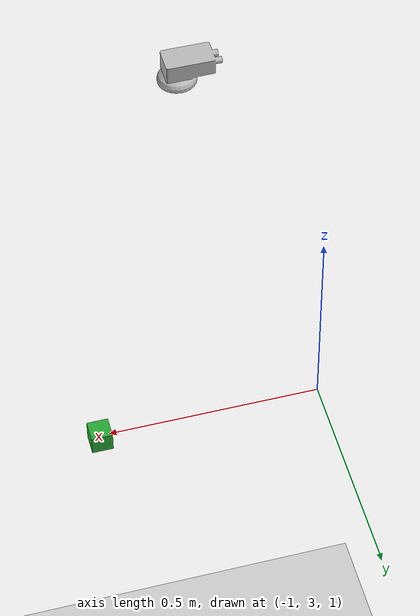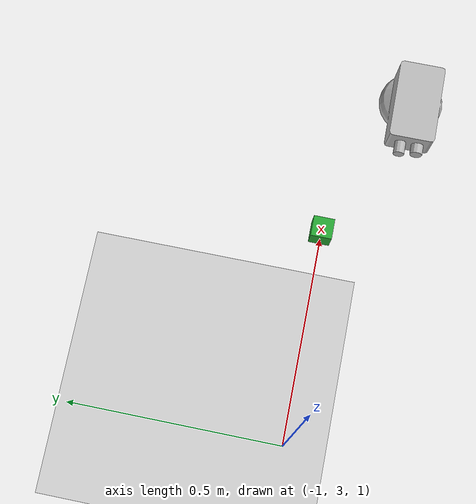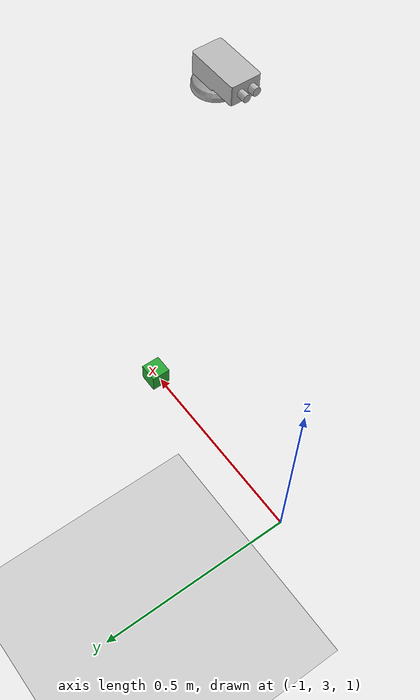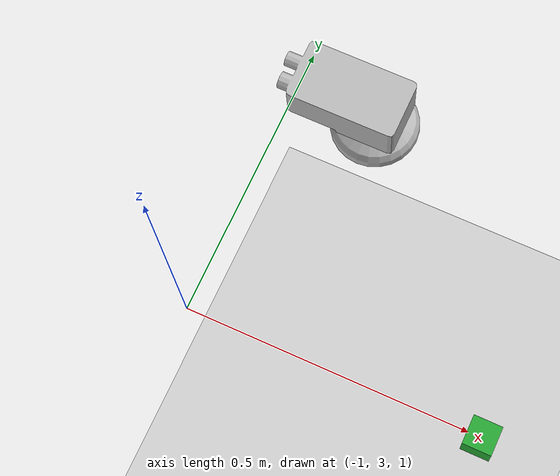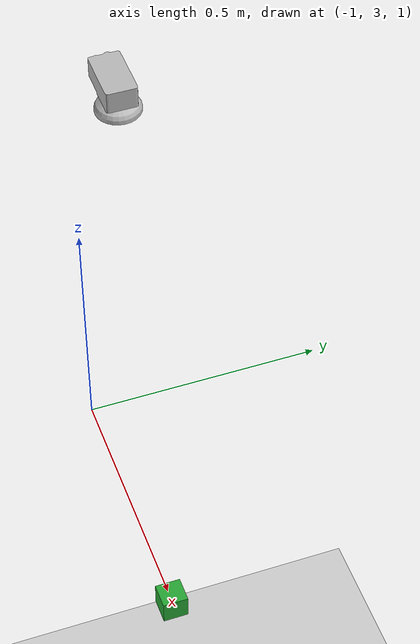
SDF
<?xml version="1.0"?>
<sdf version='1.7'>
  <world name='omtp_world'>

    <light name='sun' type='directional'>
      <cast_shadows>1</cast_shadows>
      <pose>0 0 10 0 -0 0</pose>
      <diffuse>0.8 0.8 0.8 1</diffuse>
      <specular>0.2 0.2 0.2 1</specular>
      <attenuation>
        <range>1000</range>
        <constant>0.9</constant>
        <linear>0.01</linear>
        <quadratic>0.001</quadratic>
      </attenuation>
      <direction>-0.5 0.1 -0.9</direction>
      <spot>
        <inner_angle>0</inner_angle>
        <outer_angle>0</outer_angle>
        <falloff>0</falloff>
      </spot>
    </light>

    <model name='ground_plane'>
      <static>1</static>
      <link name='link'>
        <collision name='collision'>

          <geometry>
            <plane>
              <normal>0 0 1</normal>
              <size>100 100</size>
            </plane>
          </geometry>

          <surface>

            <bounce>
            </bounce>

            <friction>
              <ode>
                <mu>100</mu>
                <mu2>50</mu2>
              </ode>
            </friction>

            <contact>
              <collide_bitmask>65535</collide_bitmask>
              <ode/>
            </contact>

          </surface>

          <max_contacts>10</max_contacts>

        </collision>

        <visual name='visual'>
          <cast_shadows>0</cast_shadows>
          <geometry>
            <plane>
              <normal>0 0 1</normal>
              <size>100 100</size>
            </plane>
          </geometry>
          <material>
            <script>
              <uri>file://media/materials/scripts/gazebo.material</uri>
              <name>Gazebo/Grey</name>
            </script>
          </material>
        </visual>
        <self_collide>0</self_collide>
        <enable_wind>0</enable_wind>
        <kinematic>0</kinematic>
      </link>
    </model>

<physics type="ode">
  <max_step_size>0.001</max_step_size>
  <real_time_factor>1</real_time_factor>
  <real_time_update_rate>1000</real_time_update_rate>
  <gravity>0 0 -9.81</gravity>
  <magnetic_field>0.000006 0.000023 -0.000042</magnetic_field>
  <ode>
    <solver>
      <type>quick</type>
      <iters>200</iters>
      <sor>1.3</sor>
      <use_dynamic_moi_rescaling>0</use_dynamic_moi_rescaling>
    </solver>
    <constraints>
      <cfm>0</cfm>
      <erp>0.2</erp>
      <contact_max_correcting_vel>100.0</contact_max_correcting_vel>
      <contact_surface_layer>0.001</contact_surface_layer>
    </constraints>
  </ode>
</physics>

    <scene>
      <ambient>0.4 0.4 0.4 1</ambient>
      <background>0.7 0.7 0.7 1</background>
      <shadows>1</shadows>
    </scene>

    <!-- Box -->
    <model name='box_01'>
      <static>true</static>
      <pose>-0.4775 3.0 1.0 0 0 0</pose>
      <link name='link'>
        <inertial>
          <mass>0.1</mass>
          <inertia>
            <ixx>0.00004166667</ixx>
            <ixy>0</ixy>
            <ixz>0</ixz>
            <iyy>0.00004166667</iyy>
            <iyz>0</iyz>
            <izz>0.00004166667</izz>
          </inertia>
          <pose>0 0 0 0 -0 0</pose>
        </inertial>

        <collision name='collision'>

          <geometry>
            <box>
              <size>0.05 0.05 0.05</size>
            </box>
          </geometry>

          <max_contacts>10</max_contacts>

          <surface>

            <contact>
              <ode>
                <max_vel>5.0</max_vel>
                <min_depth>0.001</min_depth>                <!-- meter -->
                <kp>10000</kp>                <!-- Dynamically 'stiffness'-equivalent coefficient for contact joints -->
                <kd>0</kd>                <!-- Dynamically 'damping'-equivalent coefficient for contact joints -->
              </ode>
            </contact>

            <bounce>
              <restitution_coefficient>0.5</restitution_coefficient>              <!-- "max_vel" must be higher than 0.0 -->
              <threshold>0.01</threshold>
            </bounce>

            <friction>
              <ode>
                <mu>0.95</mu>
                <mu2>0.95</mu2>
              </ode>
            </friction>

          </surface>

        </collision>

        <visual name='visual'>
          <geometry>
            <box>
              <size>0.05 0.05 0.05</size>
            </box>
          </geometry>
          <material>
            <script>
              <name>Gazebo/Green</name>
              <uri>file://media/materials/scripts/gazebo.material</uri>
            </script>
          </material>
        </visual>
        <self_collide>0</self_collide>
        <enable_wind>0</enable_wind>
        <kinematic>0</kinematic>
      </link>
    </model>

    <gui fullscreen='0'>
      <camera name='user_camera'>
        <pose>0.85 -1.25 1.1 0 0.4 2.2</pose>
        <view_controller>orbit</view_controller>
        <projection_type>perspective</projection_type>
      </camera>
    </gui>

    <!-- include logical camera model(s) here -->
    <include>
      <static>1</static>
      <uri>model://logical_camera</uri>
      <pose> -0.68  3.0  2.1 0 1.5708 0</pose>
    </include>
  </world>
</sdf>

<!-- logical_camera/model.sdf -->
<sdf version="1.6">
  <!-- Define the SDF model.                          -->
  <!-- "name" (as seen in Gazebo) must be unique.     -->
  <!-- "name" becomes the default topic where object  -->
  <!-- poses are published in ROS under the namespace -->
  <!-- /logical_camera e.g.                           -->
  <!--     /logical_camera/logical_camera1            -->
  <!-- You can change the namespace and image topic   -->
  <model name="logical_camera1">

    <!-- Define Gazebo plugin to use                  -->
    <!-- The logical camera plugin source is found in -->
    <!-- /src and /include folders                    -->
    <plugin name="ros_logical_camera" filename="libROSLogicalCameraPlugin.so">
      <!-- Change namespace from default "/logical_camera" -->
      <!-- This will publish to /omtp/logical_camera1      -->
      <!-- instead.                                        -->
      <robotNamespace>omtp</robotNamespace>

      <!-- Overrule the default topic where object poses   -->
      <!-- are published. The topic then becomes e.g.      -->
      <!--     /omtp/my_logical_camera1                    -->
      <image_topic_ros>my_logical_camera1</image_topic_ros>

      <!-- Additional plugin settings (optional)           -->
    </plugin>

    <!-- Logical camera link and CAD model            -->
    <link name="logical_camera_link">
      <gravity>false</gravity>
      <inertial>
        <mass>0.1</mass>
        <inertia>
          <ixx>0.000166667</ixx>
          <iyy>0.000166667</iyy>
          <izz>0.000166667</izz>
        </inertia>
      </inertial>

      <collision name="collision">
        <pose>0 0 -0.02 0 0 -1.5708</pose>
        <geometry>
          <mesh>
            <uri>model://logical_camera/meshes/camera.dae</uri>
          </mesh>
        </geometry>
      </collision>

      <visual name="visual">
        <pose>0 0 -0.02 0 0 -1.5708</pose>
        <geometry>
          <mesh>
            <uri>model://logical_camera/meshes/camera.dae</uri>
          </mesh>
        </geometry>
      </visual>

      <!-- Set up logical camera sensor                 -->
      <!-- http://sdformat.org/spec?elem=sensor&ver=1.6 -->
      <sensor name="logical_camera1" type="logical_camera">
        <logical_camera>
          <near>0.2</near>
          <far>1.2</far>
          <horizontal_fov>1.1</horizontal_fov>
          <aspect_ratio>1.5</aspect_ratio>
        </logical_camera>

        <visualize>true</visualize>
        <always_on>true</always_on>
        <update_rate>10</update_rate>
      </sensor>
    </link>

  </model>
</sdf>
